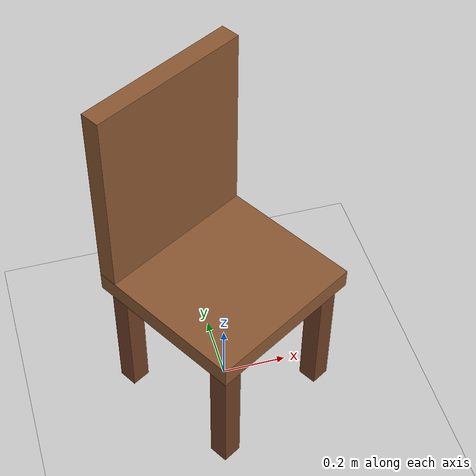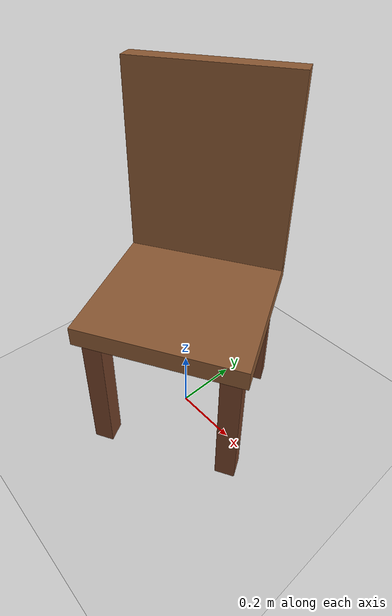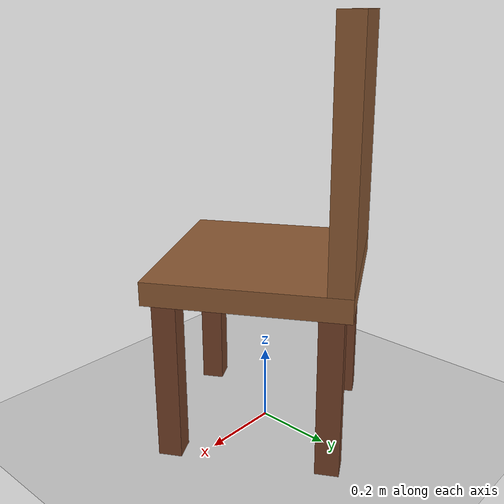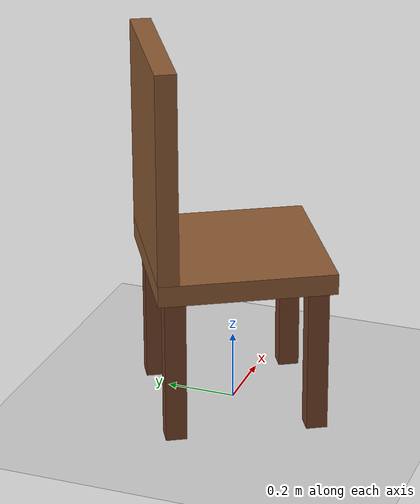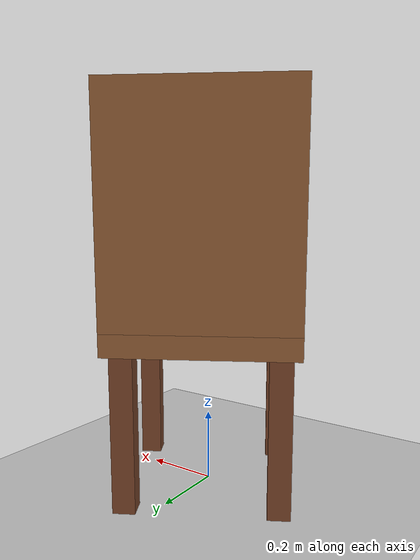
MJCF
<mujoco model="scene_rotated_chair">
  <compiler angle="radian" coordinate="local"/>
  <option timestep="0.002" gravity="0 0 -9.81"/>

  <visual>
    <headlight ambient="0.4 0.4 0.4" diffuse="0.6 0.6 0.6"/>
  </visual>

  <worldbody>
    <!-- Floor plane -->
    <geom name="floor" type="plane" size="5 5 0.1" rgba="0.8 0.8 0.8 1"/>

    <camera name="robot_cam" pos="0 -2.0 0.6" xyaxes="1 0 0 0 0 1" fovy="70"/>

    <body name="chair" pos="0 0 0.45" euler="0 0 0.5236">
      <!-- 0.5236 rad ~ 30 deg yaw ABOUT +Z -->
      <!-- Seat: 0.5 x 0.5 x 0.06 slab at ~0.45m -->
      <geom name="chair_seat" type="box" size="0.25 0.25 0.03" pos="0 0 0" rgba="0.55 0.35 0.20 1"/>
      <!-- Backrest: thin upright slab behind seat -->
      <geom name="chair_back" type="box" size="0.25 0.03 0.30" pos="0 0.22 0.33" rgba="0.55 0.35 0.20 1"/>
      <!-- Four legs: 0.03 x 0.03 x 0.45 uprights at seat corners -->
      <geom name="chair_leg_fl" type="box" size="0.03 0.03 0.22" pos="-0.20 -0.20 -0.25" rgba="0.45 0.25 0.15 1"/>
      <geom name="chair_leg_fr" type="box" size="0.03 0.03 0.22" pos=" 0.20 -0.20 -0.25" rgba="0.45 0.25 0.15 1"/>
      <geom name="chair_leg_bl" type="box" size="0.03 0.03 0.22" pos="-0.20  0.20 -0.25" rgba="0.45 0.25 0.15 1"/>
      <geom name="chair_leg_br" type="box" size="0.03 0.03 0.22" pos=" 0.20  0.20 -0.25" rgba="0.45 0.25 0.15 1"/>
    </body>
  </worldbody>
</mujoco>
